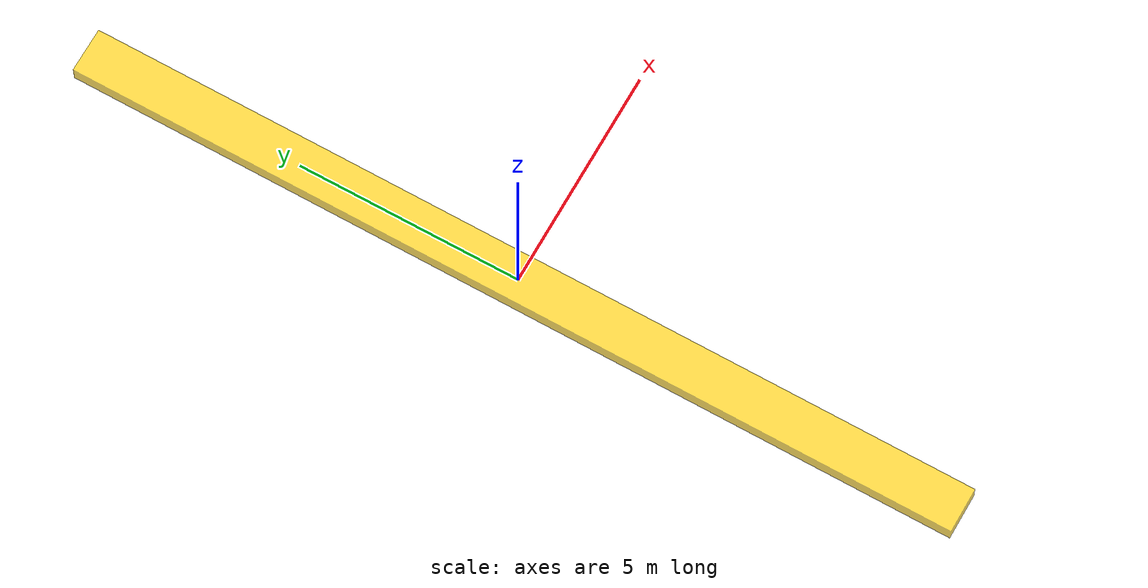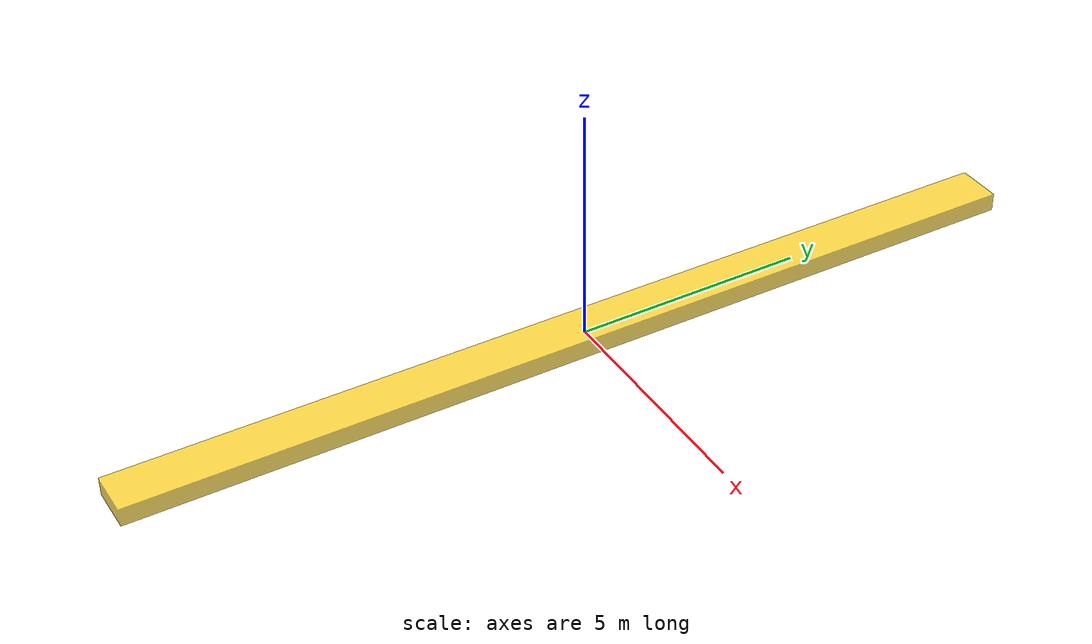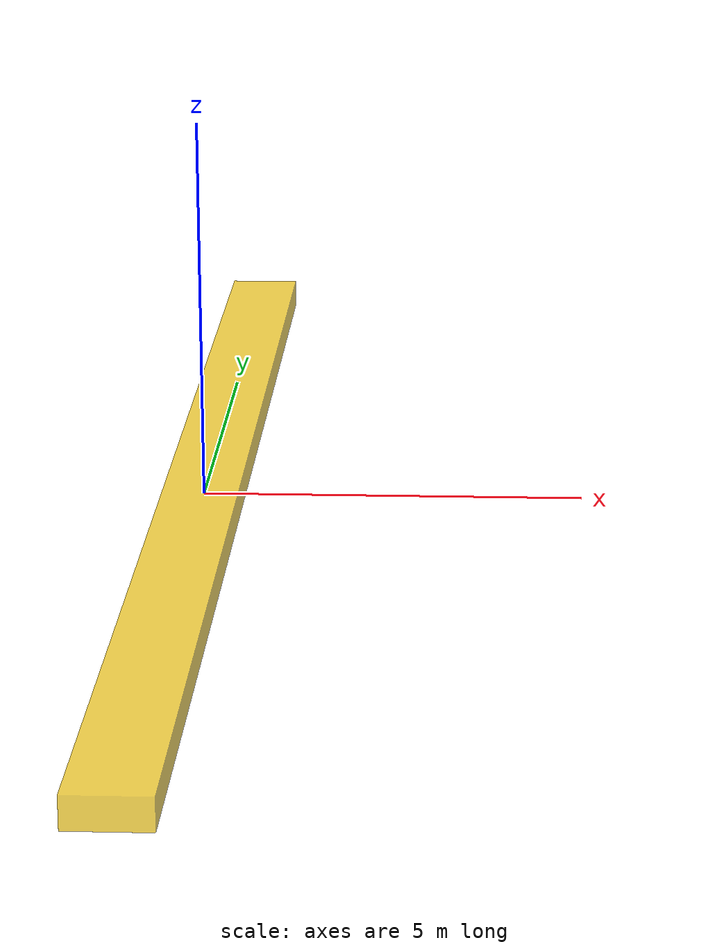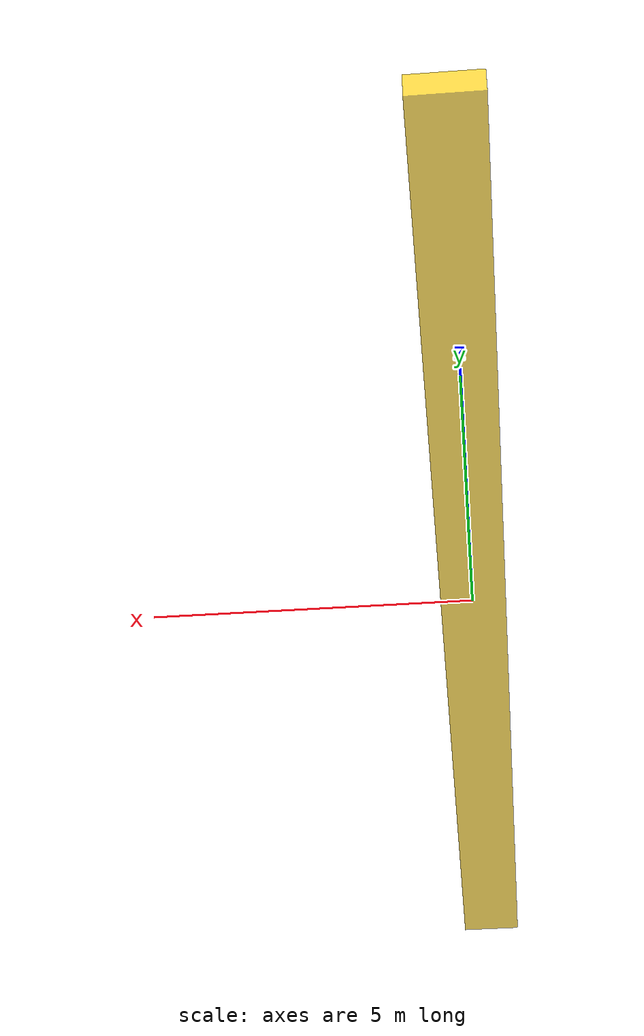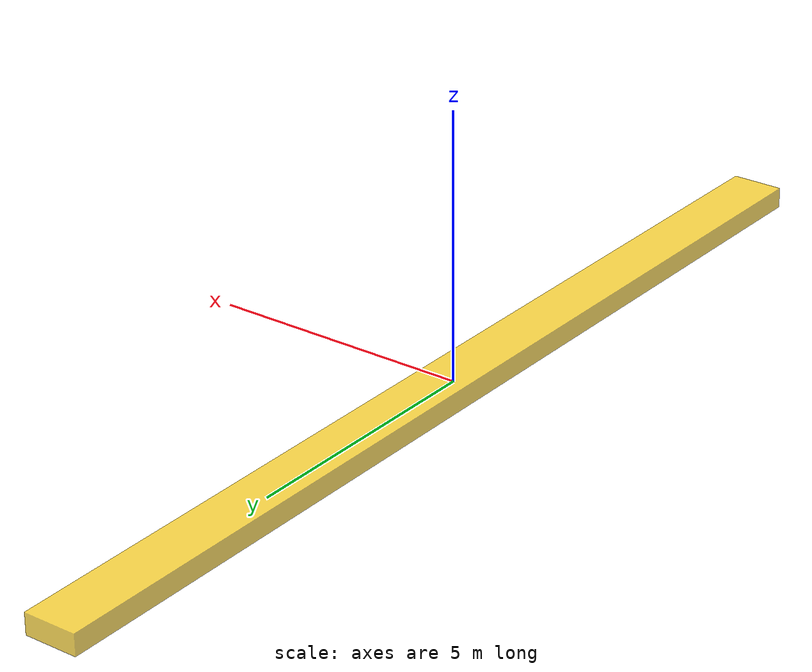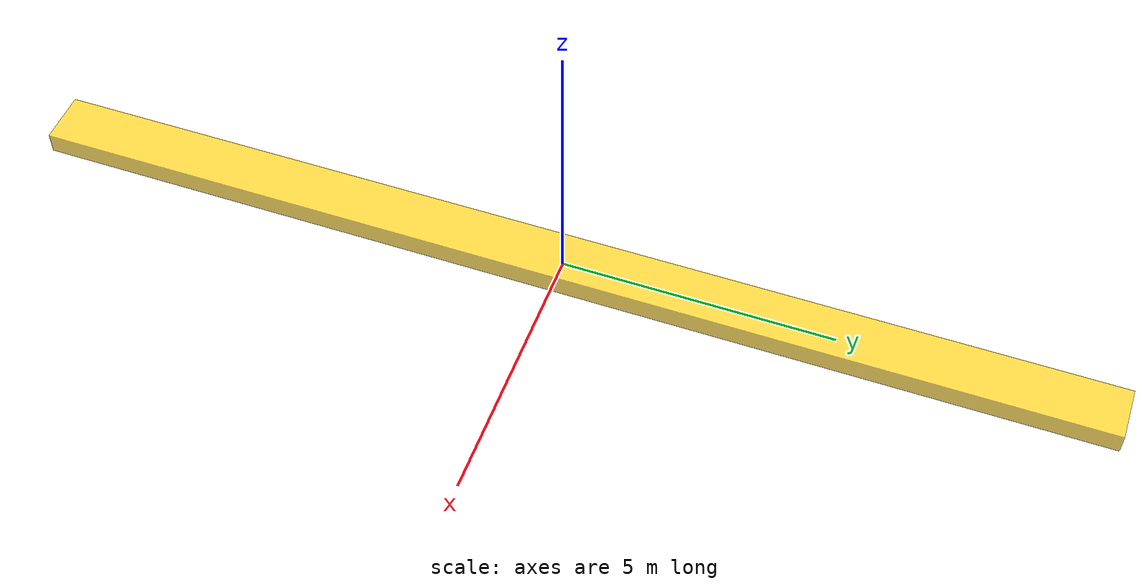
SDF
<?xml version="1.0" ?>
<sdf version="1.9">
  <model name="finish_line">
    <static>true</static>

    <link name="base_link">
      <pose>0 0 0 0 0 0</pose>
      <visual name="chassis_visual">
        <geometry>
          <box>
            <size>1.0 20 0.4</size>
          </box>
        </geometry>
        <material>
          <ambient>1.0 0.8 0.0 0.7</ambient>
          <diffuse>1.0 0.8 0.0 0.7</diffuse>
        </material>
      </visual>
    </link>
  </model>
</sdf>
